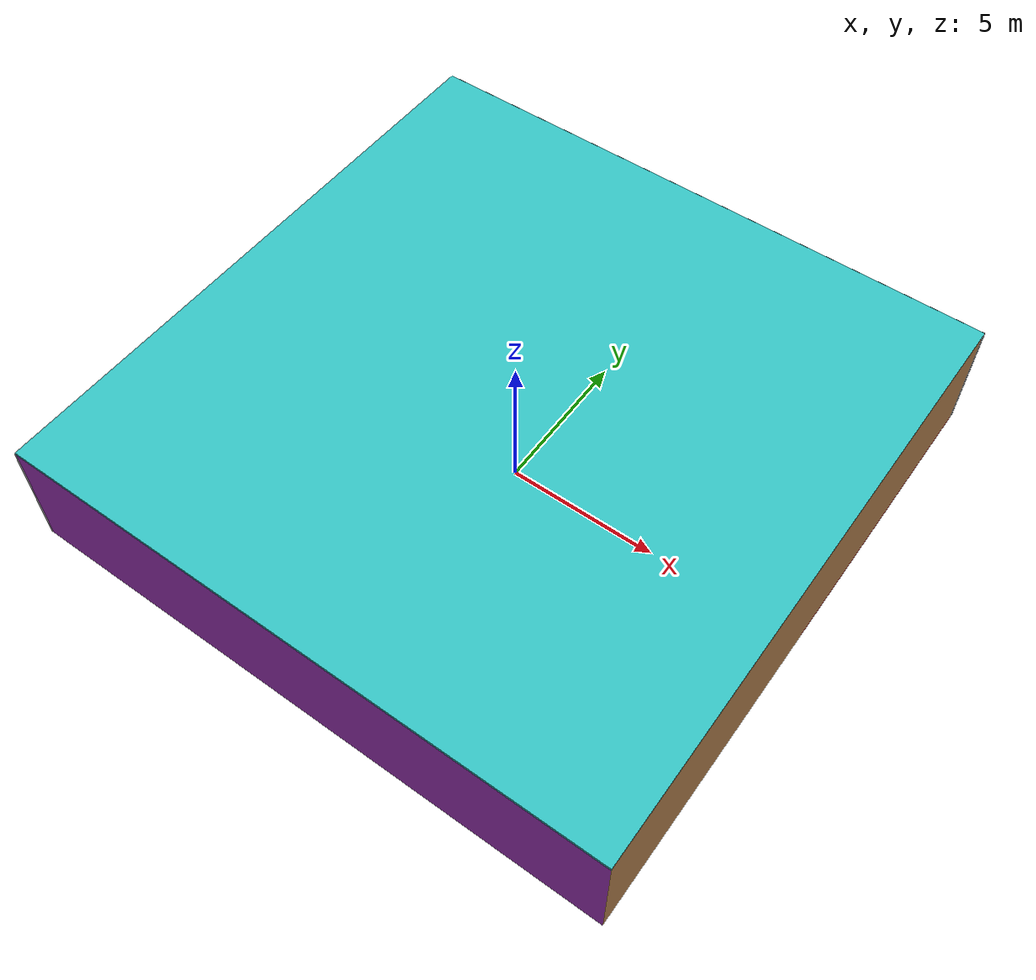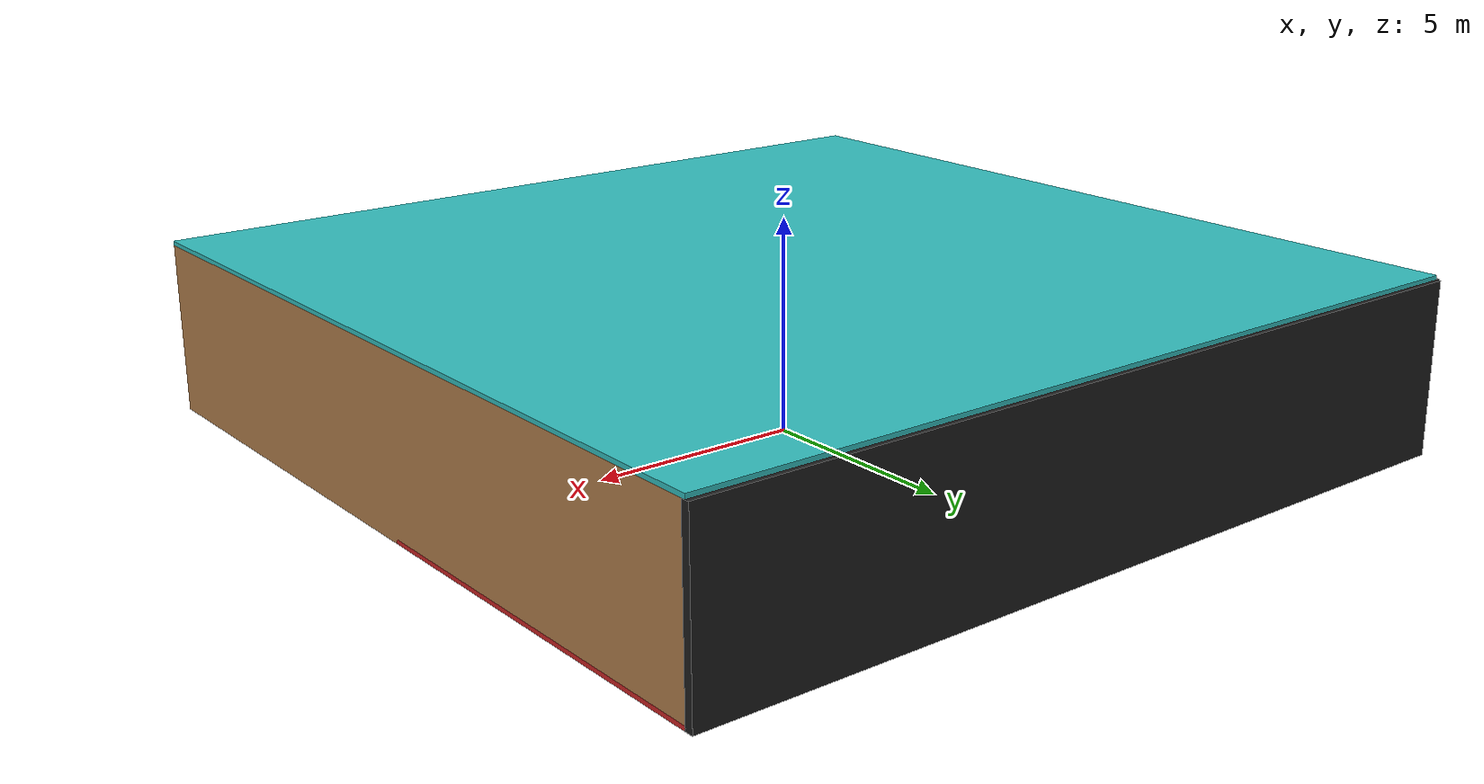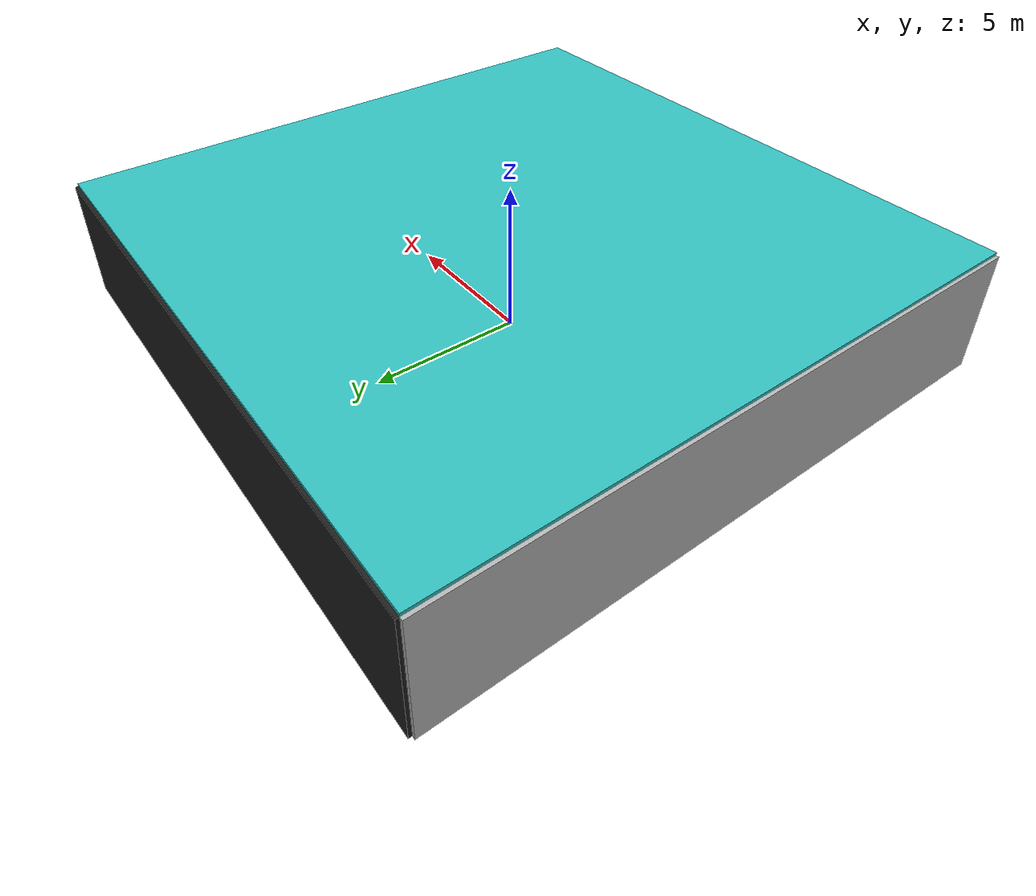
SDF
<sdf version="1.4">
 <world name="default">
  <physics type="ode">
   <max_step_size>0.001</max_step_size>
   <real_time_factor>1</real_time_factor>
   <real_time_update_rate>1000</real_time_update_rate>
   <gravity>0 0 -9.8</gravity>
  </physics>
  <scene><ambient>0.4 0.4 0.4 1</ambient><background>0.7 0.7 0.7 1</background><shadows>1</shadows></scene>
  <model name="Surrounding">
   <static>1</static>
   <link name="Ceiling">
    <collision name="Ceiling_Collision"><geometry><box><size>20 20 0.1</size></box></geometry></collision>
    <visual name="Ceiling_Visual">
     <geometry><box><size>20 20 0.1</size></box></geometry>
     <material>
      <script><uri>file://media/materials/scripts/gazebo.material</uri><name>Gazebo/Turquoise</name></script>
     </material>
    </visual>
    <pose>0 0 4.05 0 0 0</pose>
   </link>
   <link name="Wall_South">
    <collision name="Wall_South_Collision">
     <geometry><box><size>20 0 4</size></box></geometry>
     <pose>0 0 2 0 -0 0</pose>
    </collision>
    <visual name="Wall_South_Visual">
     <pose>0 0 2 0 -0 0</pose>
     <geometry><box><size>20 0 4</size></box></geometry>
     <material>
      <script><uri>file://media/materials/scripts/gazebo.material</uri><name>Gazebo/Purple</name></script>
     </material>
    </visual>
    <velocity_decay><linear>0</linear><angular>0</angular></velocity_decay>
    <pose>0 -10 0 0 -0 0</pose>
   </link>
   <link name="Wall_East">
    <collision name="Wall_21_Collision">
     <geometry><box><size>20 0 4</size></box></geometry>
     <pose>0 0 2 0 -0 0</pose>
    </collision>
    <visual name="Wall_21_Visual">
     <pose>0 0 2 0 -0 0</pose>
     <geometry><box><size>20 0 4</size></box></geometry>
     <material>
      <script><uri>file://media/materials/scripts/gazebo.material</uri><name>Gazebo/WoodFloor</name></script>
     </material>
    </visual>
    <velocity_decay><linear>0</linear><angular>0</angular></velocity_decay>
    <pose>10 0 0 0 -0 1.5708</pose>
   </link>
   <link name="Wall_North">
    <collision name="Wall_22_Collision">
     <geometry><box><size>20 0.2 4</size></box></geometry>
     <pose>0 0 2 0 -0 0</pose>
    </collision>
    <visual name="Wall_22_Visual">
     <pose>0 0 2 0 -0 0</pose>
     <geometry><box><size>20 0.2 4</size></box></geometry>
     <material>
      <script><uri>file://media/materials/scripts/gazebo.material</uri><name>Gazebo/FlatBlack</name></script>
     </material>
    </visual>
    <velocity_decay><linear>0</linear><angular>0</angular></velocity_decay>
    <pose>0 10 0 0 -0 0</pose>
   </link>
   <link name="Wall_West">
    <collision name="Wall_23_Collision">
     <geometry><box><size>20 0.2 4</size></box></geometry>
     <pose>0 0 2 0 -0 0</pose>
    </collision>
    <visual name="Wall_23_Visual">
     <pose>0 0 2 0 -0 0</pose>
     <geometry><box><size>20 0.2 4</size></box></geometry>
     <material>
      <script><uri>file://media/materials/scripts/gazebo.material</uri><name>Gazebo/Pioneer2Body</name></script>
     </material>
    </visual>
    <velocity_decay><linear>0</linear><angular>0</angular></velocity_decay>
    <pose>-10 0 0 0 0 -1.5708</pose>
   </link>
   <link name="Ground_link">
    <collision name="collision">
     <pose>0 0 .05 0 -0 0</pose>
     <geometry><box><size>20 20 0.1</size></box></geometry>
    </collision>
    <visual name="visual">
     <pose>0 0 .05 0 -0 0</pose>
     <geometry><box><size>20 20 0.1</size></box></geometry>
     <material>
      <script><uri>file://media/materials/scripts/gazebo.material</uri><name>Gazebo/RedBright</name></script>
     </material>
    </visual>
   </link>
   <static>1</static>
  </model>
  <spherical_coordinates>
   <surface_model>EARTH_WGS84</surface_model>
   <latitude_deg>0</latitude_deg>
   <longitude_deg>0</longitude_deg>
   <elevation>0</elevation>
   <heading_deg>0</heading_deg>
  </spherical_coordinates>
  <light name="lightball_0" type="diffuse">
   <diffuse>0.8 0.8 0.8 1</diffuse>
   <specular>0.2 0.2 0.2 1</specular>
   <attenuation>
    <range>100</range>
    <constant>0.7</constant>
    <linear>0.01</linear>
    <quadratic>0.001</quadratic>
   </attenuation>
   <direction>-0.5 0.1 -0.9</direction>
   <pose>0.0413243601844 -2.20161413627 2.12365102792 0 0 0</pose>
  </light>
  <light name="lightball_1" type="diffuse">
   <diffuse>0.8 0.8 0.8 1</diffuse>
   <specular>0.2 0.2 0.2 1</specular>
   <attenuation>
    <range>100</range>
    <constant>0.7</constant>
    <linear>0.01</linear>
    <quadratic>0.001</quadratic>
   </attenuation>
   <direction>-0.5 0.1 -0.9</direction>
   <pose>-0.659933099426 3.06878291138 3.73095040594 0 0 0</pose>
  </light>
  <light name="lightball_2" type="diffuse">
   <diffuse>0.8 0.8 0.8 1</diffuse>
   <specular>0.2 0.2 0.2 1</specular>
   <attenuation>
    <range>100</range>
    <constant>0.7</constant>
    <linear>0.01</linear>
    <quadratic>0.001</quadratic>
   </attenuation>
   <direction>-0.5 0.1 -0.9</direction>
   <pose>-0.771117257234 -2.9224932264 1.71386027235 0 0 0</pose>
  </light>
  <light name="lightball_3" type="diffuse">
   <diffuse>0.8 0.8 0.8 1</diffuse>
   <specular>0.2 0.2 0.2 1</specular>
   <attenuation>
    <range>100</range>
    <constant>0.7</constant>
    <linear>0.01</linear>
    <quadratic>0.001</quadratic>
   </attenuation>
   <direction>-0.5 0.1 -0.9</direction>
   <pose>0.278933447038 9.69438573341 2.9196701458 0 0 0</pose>
  </light>
  <light name="lightball_4" type="diffuse">
   <diffuse>0.8 0.8 0.8 1</diffuse>
   <specular>0.2 0.2 0.2 1</specular>
   <attenuation>
    <range>100</range>
    <constant>0.7</constant>
    <linear>0.01</linear>
    <quadratic>0.001</quadratic>
   </attenuation>
   <direction>-0.5 0.1 -0.9</direction>
   <pose>7.09516061634 8.71580081319 3.65907759219 0 0 0</pose>
  </light>
  <light name="lightball_5" type="diffuse">
   <diffuse>0.8 0.8 0.8 1</diffuse>
   <specular>0.2 0.2 0.2 1</specular>
   <attenuation>
    <range>100</range>
    <constant>0.7</constant>
    <linear>0.01</linear>
    <quadratic>0.001</quadratic>
   </attenuation>
   <direction>-0.5 0.1 -0.9</direction>
   <pose>9.64881027208 -1.28517983127 2.91096224042 0 0 0</pose>
  </light>
  <light name="lightball_6" type="diffuse">
   <diffuse>0.8 0.8 0.8 1</diffuse>
   <specular>0.2 0.2 0.2 1</specular>
   <attenuation>
    <range>100</range>
    <constant>0.7</constant>
    <linear>0.01</linear>
    <quadratic>0.001</quadratic>
   </attenuation>
   <direction>-0.5 0.1 -0.9</direction>
   <pose>5.24788559879 6.34423569165 3.48206908903 0 0 0</pose>
  </light>
  <light name="lightball_7" type="diffuse">
   <diffuse>0.8 0.8 0.8 1</diffuse>
   <specular>0.2 0.2 0.2 1</specular>
   <attenuation>
    <range>100</range>
    <constant>0.7</constant>
    <linear>0.01</linear>
    <quadratic>0.001</quadratic>
   </attenuation>
   <direction>-0.5 0.1 -0.9</direction>
   <pose>-0.0949004271379 4.81401855626 1.44730807283 0 0 0</pose>
  </light>
  <light name="lightball_8" type="diffuse">
   <diffuse>0.8 0.8 0.8 1</diffuse>
   <specular>0.2 0.2 0.2 1</specular>
   <attenuation>
    <range>100</range>
    <constant>0.7</constant>
    <linear>0.01</linear>
    <quadratic>0.001</quadratic>
   </attenuation>
   <direction>-0.5 0.1 -0.9</direction>
   <pose>0.359488505031 -6.33749245607 2.42003411715 0 0 0</pose>
  </light>
  <light name="lightball_9" type="diffuse">
   <diffuse>0.8 0.8 0.8 1</diffuse>
   <specular>0.2 0.2 0.2 1</specular>
   <attenuation>
    <range>100</range>
    <constant>0.7</constant>
    <linear>0.01</linear>
    <quadratic>0.001</quadratic>
   </attenuation>
   <direction>-0.5 0.1 -0.9</direction>
   <pose>-5.22348779137 -5.55487164879 1.62227108619 0 0 0</pose>
  </light>
  <light name="lightball_10" type="diffuse">
   <diffuse>0.8 0.8 0.8 1</diffuse>
   <specular>0.2 0.2 0.2 1</specular>
   <attenuation>
    <range>100</range>
    <constant>0.7</constant>
    <linear>0.01</linear>
    <quadratic>0.001</quadratic>
   </attenuation>
   <direction>-0.5 0.1 -0.9</direction>
   <pose>6.6847437502 -3.71870124543 2.51728849486 0 0 0</pose>
  </light>
  <include>
   <uri>model://textured_shapes</uri>
   <pose>-7.15555214126 3.4056976876 0 0 0 2.24325193709</pose>
  </include>
  <include>
   <uri>model://construction_cone</uri>
   <pose>-1.68139134146 -0.656993342954 0 0 0 1.06209334803</pose>
  </include>
  <include><uri>model://table</uri><pose>4.75513332571 -3.7892042727 0 0 0 0.179328370421</pose></include>
  <include>
   <uri>model://robocup_3Dsim_goal</uri>
   <pose>5.12965426915 4.86062921915 0 0 0 2.69063702309</pose>
  </include>
  <include>
   <uri>model://robocup_3Dsim_goal</uri>
   <pose>6.31324231507 -7.14136427706 0 0 0 0.333151939949</pose>
  </include>
 </world>
</sdf>

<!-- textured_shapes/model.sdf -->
<sdf version="1.6">
  <model name="textured_shapes">
    <pose>0 0 0.5 0 0 0</pose>
    <link name="box">
      <pose>0 -1.5 0 0 0 0</pose>
      <collision name="collision">
        <geometry>
          <box>
            <size>1 1 1</size>
          </box>
        </geometry>
      </collision>
      <visual name="visual">
        <geometry>
          <box>
            <size>1 1 1</size>
          </box>
        </geometry>
        <material>
          <script>
            <uri>model://../model_source/models/textured_shapes/materials/scripts</uri>
            <uri>model://../model_source/models/textured_shapes/materials/textures</uri>
            <name>TexturedShape/Squares</name>
          </script>
        </material>
      </visual>
    </link>
    <link name="sphere">
      <collision name="collision">
        <geometry>
          <sphere>
            <radius>0.5</radius>
          </sphere>
        </geometry>
      </collision>
      <visual name="visual">
        <geometry>
          <sphere>
            <radius>0.5</radius>
          </sphere>
        </geometry>
        <material>
          <script>
            <uri>model://../model_source/models/textured_shapes/materials/scripts</uri>
            <uri>model://../model_source/models/textured_shapes/materials/textures</uri>
            <name>TexturedShape/Squares</name>
          </script>
        </material>
      </visual>
    </link>
    <link name="cylinder">
      <pose>0 1.5 0 0 0 0</pose>
      <collision name="collision">
        <geometry>
          <cylinder>
            <radius>0.5</radius>
            <length>1</length>
          </cylinder>
        </geometry>
      </collision>
      <visual name="visual">
        <geometry>
          <cylinder>
            <radius>0.5</radius>
            <length>1</length>
          </cylinder>
        </geometry>
        <material>
          <script>
            <uri>model://../model_source/models/textured_shapes/materials/scripts</uri>
            <uri>model://../model_source/models/textured_shapes/materials/textures</uri>
            <name>TexturedShape/Squares</name>
          </script>
        </material>
      </visual>
    </link>
  </model>
</sdf>

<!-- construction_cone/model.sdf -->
<sdf version="1.5">
  <model name="Construction Cone">
    <link name="link">
      <collision name="collision">
        <geometry>
          <mesh>
            <scale>10 10 10</scale>
            <uri>file://isr-testbed/construction_cone/meshes/construction_cone.dae</uri>
          </mesh>
        </geometry>
      </collision>
      <visual name="visual">
        <geometry>
          <mesh>
            <scale>10 10 10</scale>
            <uri>file://isr-testbed/construction_cone/meshes/construction_cone.dae</uri>
          </mesh>
        </geometry>
      </visual>
    </link>
  </model>
</sdf>

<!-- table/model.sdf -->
<sdf version="1.5">
  <model name="table">
    <static>true</static>
    <link name="link">
      <collision name="surface">
        <pose>0 0 1.0 0 0 0</pose>
        <geometry>
          <box>
            <size>1.5 0.8 0.03</size>
          </box>
        </geometry>
        <surface>
          <friction>
            <ode>
              <mu>0.6</mu>
              <mu2>0.6</mu2>
            </ode>
          </friction>
        </surface>
      </collision>
      <visual name="visual1">
        <pose>0 0 1.0 0 0 0</pose>
        <geometry>
          <box>
            <size>1.5 0.8 0.03</size>
          </box>
        </geometry>
        <material>
          <script>
            <uri>model://media/materials/scripts/gazebo.material</uri>
            <name>Gazebo/Wood</name>
          </script>
        </material>
      </visual>
      <collision name="front_left_leg">
        <pose>0.68 0.38 0.5 0 0 0</pose>
        <geometry>
          <cylinder>
            <radius>0.02</radius>
            <length>1.0</length>
          </cylinder>
        </geometry>
      </collision>
      <visual name="front_left_leg">
        <pose>0.68 0.38 0.5 0 0 0</pose>
        <geometry>
          <cylinder>
            <radius>0.02</radius>
            <length>1.0</length>
          </cylinder>
        </geometry>
        <material>
          <script>
            <uri>model://media/materials/scripts/gazebo.material</uri>
            <name>Gazebo/Grey</name>
          </script>
        </material>
      </visual>
      <collision name="front_right_leg">
        <pose>0.68 -0.38 0.5 0 0 0</pose>
        <geometry>
          <cylinder>
            <radius>0.02</radius>
            <length>1.0</length>
          </cylinder>
        </geometry>
      </collision>
      <visual name="front_right_leg">
        <pose>0.68 -0.38 0.5 0 0 0</pose>
        <geometry>
          <cylinder>
            <radius>0.02</radius>
            <length>1.0</length>
          </cylinder>
        </geometry>
        <material>
          <script>
            <uri>model://media/materials/scripts/gazebo.material</uri>
            <name>Gazebo/Grey</name>
          </script>
        </material>
      </visual>
      <collision name="back_right_leg">
        <pose>-0.68 -0.38 0.5 0 0 0</pose>
        <geometry>
          <cylinder>
            <radius>0.02</radius>
            <length>1.0</length>
          </cylinder>
        </geometry>
      </collision>
      <visual name="back_right_leg">
        <pose>-0.68 -0.38 0.5 0 0 0</pose>
        <geometry>
          <cylinder>
            <radius>0.02</radius>
            <length>1.0</length>
          </cylinder>
        </geometry>
        <material>
          <script>
            <uri>model://media/materials/scripts/gazebo.material</uri>
            <name>Gazebo/Grey</name>
          </script>
        </material>
      </visual>
      <collision name="back_left_leg">
        <pose>-0.68 0.38 0.5 0 0 0</pose>
        <geometry>
          <cylinder>
            <radius>0.02</radius>
            <length>1.0</length>
          </cylinder>
        </geometry>
      </collision>
      <visual name="back_left_leg">
        <pose>-0.68 0.38 0.5 0 0 0</pose>
        <geometry>
          <cylinder>
            <radius>0.02</radius>
            <length>1.0</length>
          </cylinder>
        </geometry>
        <material>
          <script>
            <uri>model://media/materials/scripts/gazebo.material</uri>
            <name>Gazebo/Grey</name>
          </script>
        </material>
      </visual>
    </link>
  </model>
</sdf>

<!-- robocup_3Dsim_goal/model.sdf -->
<sdf version="1.5">
  <model name="robocup_3d_goal">
    <static>true</static>
    <link name="left_post">
      <pose>0 1.05 0.45 0 0 0</pose>
      <collision name="collision">
        <geometry>
          <cylinder>
            <radius>0.05</radius>
            <length>0.9</length>
          </cylinder>
        </geometry>
      </collision>
      <visual name="visual">
        <geometry>
          <cylinder>
            <radius>0.05</radius>
            <length>0.9</length>
          </cylinder>
        </geometry>
        <material>
          <script>
            <uri>file://media/materials/scripts/gazebo.material</uri>
            <name>Gazebo/ZincYellow</name>
          </script>
        </material>
      </visual>
    </link>
    <link name="left_support_horiz_lower">
      <pose>0.30 1.05 0.01 0 0 0</pose>
      <collision name="collision">
        <geometry>
          <box>
            <size>0.50 0.02 0.02</size>
          </box>
        </geometry>
      </collision>
      <visual name="visual">
        <geometry>
          <box>
            <size>0.50 0.02 0.02</size>
          </box>
        </geometry>
        <material>
          <script>
            <uri>file://media/materials/scripts/gazebo.material</uri>
            <name>Gazebo/White</name>
          </script>
        </material>
      </visual>
    </link>
    <link name="left_support_horiz_upper">
      <pose>0.30 1.05 0.79 0 0 0</pose>
      <collision name="collision">
        <geometry>
          <box>
            <size>0.50 0.02 0.02</size>
          </box>
        </geometry>
      </collision>
      <visual name="visual">
        <geometry>
          <box>
            <size>0.50 0.02 0.02</size>
          </box>
        </geometry>
        <material>
          <script>
            <uri>file://media/materials/scripts/gazebo.material</uri>
            <name>Gazebo/White</name>
          </script>
        </material>
      </visual>
    </link>
    <link name="left_support_vertical">
      <pose>0.56 1.05 0.4 0 1.5708 0</pose>
      <collision name="collision">
        <geometry>
          <box>
            <size>0.80 0.02 0.02</size>
          </box>
        </geometry>
      </collision>
      <visual name="visual">
        <geometry>
          <box>
            <size>0.80 0.02 0.02</size>
          </box>
        </geometry>
        <material>
          <script>
            <uri>file://media/materials/scripts/gazebo.material</uri>
            <name>Gazebo/White</name>
          </script>
        </material>
      </visual>
    </link>
    <link name="right_support_horiz_lower">
      <pose>0.30 -1.05 0.01 0 0 0</pose>
      <collision name="collision">
        <geometry>
          <box>
            <size>0.50 0.02 0.02</size>
          </box>
        </geometry>
      </collision>
      <visual name="visual">
        <geometry>
          <box>
            <size>0.50 0.02 0.02</size>
          </box>
        </geometry>
        <material>
          <script>
            <uri>file://media/materials/scripts/gazebo.material</uri>
            <name>Gazebo/White</name>
          </script>
        </material>
      </visual>
    </link>
    <link name="right_support_horiz_upper">
      <pose>0.30 -1.05 0.79 0 0 0</pose>
      <collision name="collision">
        <geometry>
          <box>
            <size>0.50 0.02 0.02</size>
          </box>
        </geometry>
      </collision>
      <visual name="visual">
        <geometry>
          <box>
            <size>0.50 0.02 0.02</size>
          </box>
        </geometry>
        <material>
          <script>
            <uri>file://media/materials/scripts/gazebo.material</uri>
            <name>Gazebo/White</name>
          </script>
        </material>
      </visual>
    </link>
    <link name="right_support_vertical">
      <pose>0.56 -1.05 0.4 0 1.5708 0</pose>
      <collision name="collision">
        <geometry>
          <box>
            <size>0.80 0.02 0.02</size>
          </box>
        </geometry>
      </collision>
      <visual name="visual">
        <geometry>
          <box>
            <size>0.80 0.02 0.02</size>
          </box>
        </geometry>
        <material>
          <script>
            <uri>file://media/materials/scripts/gazebo.material</uri>
            <name>Gazebo/White</name>
          </script>
        </material>
      </visual>
    </link>
    <link name="center_support_horiz_lower">
      <pose>0.56 0 0.01 0 1.5708 0</pose>
      <collision name="collision">
        <geometry>
          <box>
            <size>0.02 2.08 0.02</size>
          </box>
        </geometry>
      </collision>
      <visual name="visual">
        <geometry>
          <box>
            <size>0.02 2.08 0.02</size>
          </box>
        </geometry>
        <material>
          <script>
            <uri>file://media/materials/scripts/gazebo.material</uri>
            <name>Gazebo/White</name>
          </script>
        </material>
      </visual>
    </link>
    <link name="center_support_horiz_upper">
      <pose>0.56 0 0.79 0 1.5708 0</pose>
      <collision name="collision">
        <geometry>
          <box>
            <size>0.02 2.08 0.02</size>
          </box>
        </geometry>
      </collision>
      <visual name="visual">
        <geometry>
          <box>
            <size>0.02 2.08 0.02</size>
          </box>
        </geometry>
        <material>
          <script>
            <uri>file://media/materials/scripts/gazebo.material</uri>
            <name>Gazebo/White</name>
          </script>
        </material>
      </visual>
    </link>
    <link name="right_post">
      <pose>0 -1.05 0.45 0 0 0</pose>
      <collision name="collision">
        <geometry>
          <cylinder>
            <radius>0.05</radius>
            <length>0.9</length>
          </cylinder>
        </geometry>
      </collision>
      <visual name="visual">
        <geometry>
          <cylinder>
            <radius>0.05</radius>
            <length>0.9</length>
          </cylinder>
        </geometry>
        <material>
          <script>
            <uri>file://media/materials/scripts/gazebo.material</uri>
            <name>Gazebo/ZincYellow</name>
          </script>
        </material>
      </visual>
    </link>
    <link name="crossbar">
      <pose>0 0 0.85 1.57 1.57 0</pose>
      <collision name="collision">
        <geometry>
          <cylinder>
            <radius>0.05</radius>
            <length>2.0</length>
          </cylinder>
        </geometry>
      </collision>
      <visual name="visual">
        <geometry>
          <cylinder>
            <radius>0.05</radius>
            <length>2.0</length>
          </cylinder>
        </geometry>
        <material>
          <script>
            <uri>file://media/materials/scripts/gazebo.material</uri>
            <name>Gazebo/ZincYellow</name>
          </script>
        </material>
      </visual>
    </link>
    <link name="center_net">
      <pose>0.56 0 0.40 0 0 0</pose>
      <collision name="collision">
        <geometry>
          <box>
            <size>0.01 2.1 0.80</size>
          </box>
        </geometry>
      </collision>
      <visual name="visual">
        <geometry>
          <box>
            <size>0.01 2.1 0.80</size>
          </box>
        </geometry>
        <material>
          <script>
            <uri>model://../model_source/models/robocup09_spl_field/materials/scripts/</uri>
            <uri>model://../model_source/models/robocup09_spl_field/materials/textures/</uri>
            <name>RoboCup/Net</name>
          </script>
        </material>
      </visual>
    </link>
    <link name="left_net">
      <pose>0.30 1.05 0.40 0 0 0</pose>
      <collision name="collision">
        <geometry>
          <box>
            <size>0.50 0.01 0.76</size>
          </box>
        </geometry>
      </collision>
      <visual name="visual">
        <geometry>
          <box>
            <size>0.50 0.01 0.76</size>
          </box>
        </geometry>
        <material>
          <script>
            <uri>model://../model_source/models/robocup09_spl_field/materials/scripts/</uri>
            <uri>model://../model_source/models/robocup09_spl_field/materials/textures/</uri>
            <name>RoboCup/Net</name>
          </script>
        </material>
      </visual>
    </link>
    <link name="right_net">
      <pose>0.30 -1.05 0.40 0 0 0</pose>
      <collision name="collision">
        <geometry>
          <box>
            <size>0.50 0.01 0.76</size>
          </box>
        </geometry>
      </collision>
      <visual name="visual">
        <geometry>
          <box>
            <size>0.50 0.01 0.76</size>
          </box>
        </geometry>
        <material>
          <script>
            <uri>model://../model_source/models/robocup09_spl_field/materials/scripts/</uri>
            <uri>model://../model_source/models/robocup09_spl_field/materials/textures/</uri>
            <name>RoboCup/Net</name>
          </script>
        </material>
      </visual>
    </link>
  </model>
</sdf>
